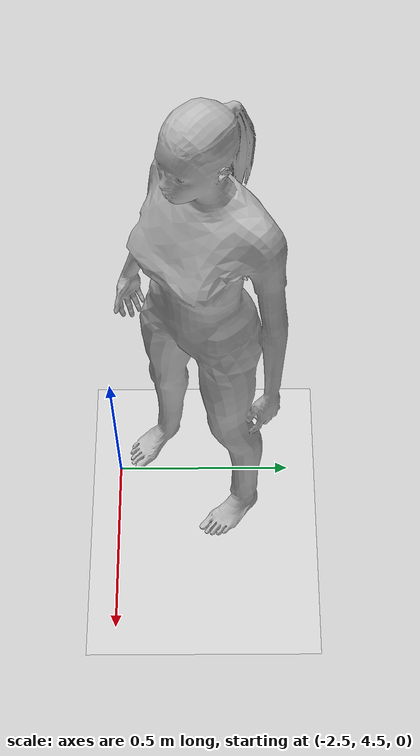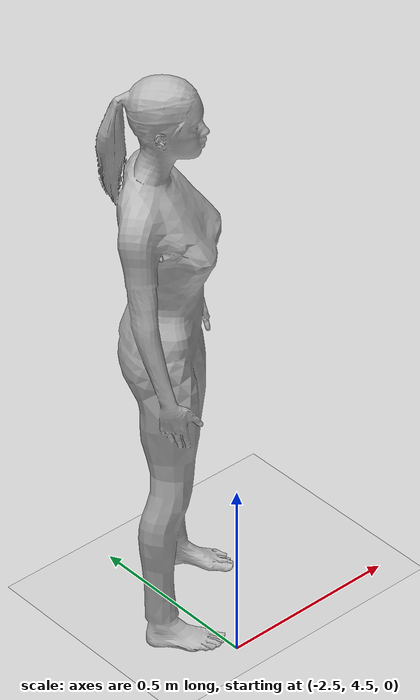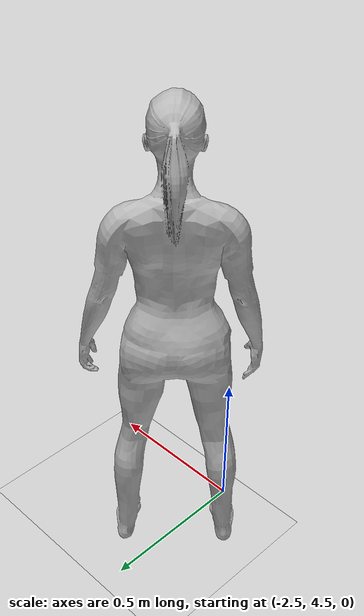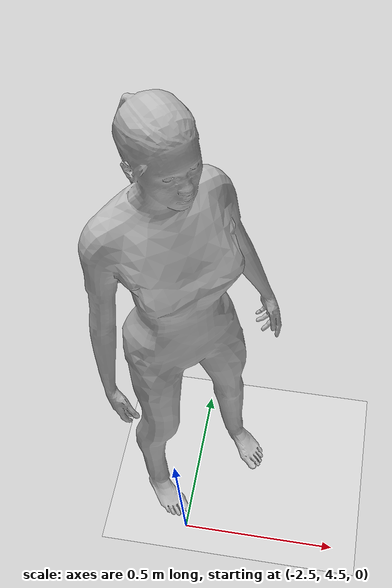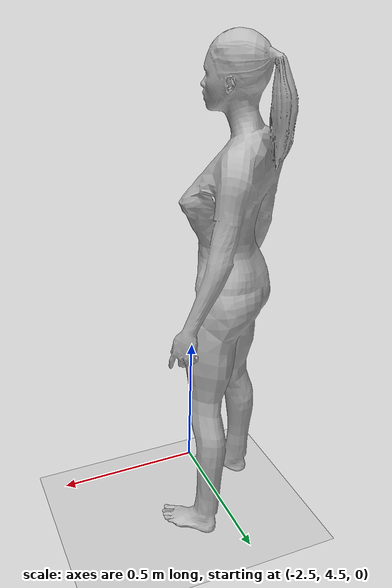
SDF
<?xml version="1.0" ?>

<sdf version="1.5">
  <!-- We use a custom world for the robot so that the camera angle is launched correctly -->
  <world name="diff_drive_world">

    <!-- Add a ground plane -->
    <include>
        <uri>model://ground_plane</uri>
        <material>
            <script>
                <uri>file://media/materials/scripts/gazebo.material</uri>
            </script>
        </material>
    </include>

    <!-- Global light source -->
    <include>
      <uri>model://sun</uri>
    </include>

    <!-- Apartment Walls -->

    <!-- Human -->
    <include>
		<uri>model://test_human</uri>
		<pose>-2.5 4.75 0 0 1.57 -0.8</pose>
    </include>

    <!-- Set up the solver used for simulation -->
    <physics name="ode_70iters" type="ode">
      <real_time_update_rate>1500</real_time_update_rate>
      <ode>
        <solver>
          <type>quick</type>
          <iters>70</iters>
        </solver>
      </ode>
    </physics>

  </world>
</sdf>

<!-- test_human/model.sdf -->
<sdf version="1.5">
  <model name="test_human">
    <link name="link">

      <inertial>
        <pose>0 -0.1 0.95 0 0 0</pose>
        <mass>60.0</mass>
        <inertia>
          <ixx>24.88</ixx>
          <ixy>0.0</ixy>
          <ixz>0.0</ixz>
          <iyy>25.73</iyy>
          <iyz>0.0</iyz>
          <izz>2.48</izz>
        </inertia>
      </inertial>

      <collision name="bottom">
		<pose>0 0 0.01 0 0 1.57</pose>
		<geometry>
			<box>
				<size>0.5 0.35 0.02</size>
			</box>
		</geometry>
      </collision>

      <collision name="person">
		<pose>0 0 0.02 0 0 1.57</pose>
        <geometry>
          <mesh>
            <uri>model://test_human/meshes/test_human.dae</uri>
          </mesh>
        </geometry>
      </collision>

      <visual name="test_human_visual">
      <pose>0 0 0.02 0 0 1.57</pose>
      <geometry>
		<mesh>
			<uri>model://test_human/meshes/test_human.dae</uri>
		</mesh>
	  </geometry>
	  </visual>

    </link>
    <static>1</static>
  </model>
</sdf>
